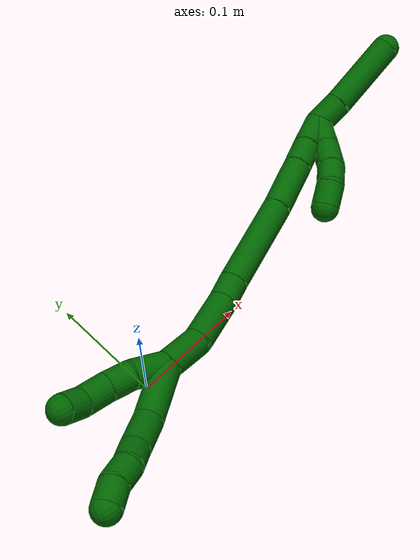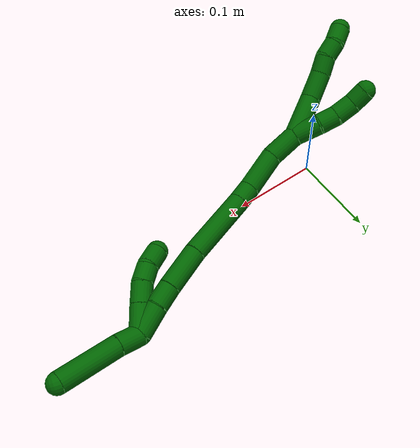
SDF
<sdf version="1.7">
 <world name="default">
  <model name="photoneo_s_sensor">
   <static>1</static>
   <pose>0 0 2 1.57079 1.57079 3.14159</pose>
   <link name="link">
    <inertial><mass>0.1</mass></inertial>
    <sensor name="sensor" type="depth">
     <update_rate>30</update_rate>
     <camera>
      <horizontal_fov>1.22</horizontal_fov>
      <image><width>1920</width><height>1200</height><format>B8G8R8</format></image>
      <clip><near>0.1</near><far>4</far></clip>
      <depth_camera><output>points</output></depth_camera>
     </camera>
     <plugin name="camera_plugin" filename="libgazebo_ros_depth_camera.so">
      <baseline>0.2</baseline>
      <alwaysOn>1</alwaysOn>
      <updateRate>0.0</updateRate>
      <cameraName>camera_ir</cameraName>
      <imageTopicName>/camera/color/image_raw</imageTopicName>
      <cameraInfoTopicName>/camera/color/camera_info</cameraInfoTopicName>
      <depthImageTopicName>/camera/depth/image_raw</depthImageTopicName>
      <depthImageCameraInfoTopicName>/camera/depth/camera_info</depthImageCameraInfoTopicName>
      <pointCloudTopicName>/camera/depth/points</pointCloudTopicName>
      <frameName>fr_optical</frameName>
      <pointCloudCutoff>0.1</pointCloudCutoff>
      <pointCloudCutoffMax>2.0</pointCloudCutoffMax>
      <distortionK1>0</distortionK1>
      <distortionK2>0</distortionK2>
      <distortionK3>0</distortionK3>
      <distortionT1>0</distortionT1>
      <distortionT2>0</distortionT2>
      <CxPrime>0</CxPrime>
      <Cx>0</Cx>
      <Cy>0</Cy>
      <focalLength>0</focalLength>
      <hackBaseline>0</hackBaseline>
     </plugin>
    </sensor>
   </link>
  </model>
  <model name="bin">
   <static>1</static>
   <link name="bottom">
    <collision name="collision-bottom">
     <pose>0 0 -0.01 0 -0 0</pose>
     <geometry><box><size>0.8 0.6 0.02</size></box></geometry>
     <surface>
      <friction><ode><mu>100</mu><mu2>100</mu2></ode></friction>
      <contact><collide_bitmask>65535</collide_bitmask></contact>
     </surface>
    </collision>
   </link>
   <link name="west_wall">
    <collision name="collision-west_wall">
     <pose>-0.41 0 0.1 0 -0 0</pose>
     <geometry><box><size>0.02 0.6 0.2</size></box></geometry>
     <surface>
      <friction><ode><mu>100</mu><mu2>100</mu2></ode></friction>
      <contact><collide_bitmask>65535</collide_bitmask></contact>
     </surface>
    </collision>
   </link>
   <link name="east_wall">
    <collision name="collision-east_wall">
     <pose>0.41 0 0.1 0 -0 0</pose>
     <geometry><box><size>0.02 0.6 0.2</size></box></geometry>
     <surface>
      <friction><ode><mu>100</mu><mu2>100</mu2></ode></friction>
      <contact><collide_bitmask>65535</collide_bitmask></contact>
     </surface>
    </collision>
   </link>
   <link name="south_wall">
    <collision name="collision-south_wall">
     <pose>0 -0.31 0.1 0 -0 0</pose>
     <geometry><box><size>0.8 0.02 0.2</size></box></geometry>
     <surface>
      <friction><ode><mu>100</mu><mu2>100</mu2></ode></friction>
      <contact><collide_bitmask>65535</collide_bitmask></contact>
     </surface>
    </collision>
   </link>
   <link name="north_wall">
    <collision name="collision-north_wall">
     <pose>0 0.31 0.1 0 -0 0</pose>
     <geometry><box><size>0.8 0.02 0.2</size></box></geometry>
     <surface>
      <friction><ode><mu>100</mu><mu2>100</mu2></ode></friction>
      <contact><collide_bitmask>65535</collide_bitmask></contact>
     </surface>
    </collision>
   </link>
  </model>
  <model name="6">
   <static>0</static>
   <link name="6">
    <collision name="collision-cylinder-e_1_2_8">
     <pose>-0.019529 8.3e-05 -0.017953 -3.13699 -0.827402 3.13111</pose>
     <geometry><cylinder><radius>0.0125</radius><length>0.053055</length></cylinder></geometry>
     <surface>
      <friction><ode><mu>1.16</mu><mu2>1.16</mu2><slip1>0</slip1><slip2>0</slip2></ode></friction>
      <contact><ode><kp>1e+06</kp><kd>1</kd><max_vel>0</max_vel><min_depth>0.001</min_depth></ode></contact>
     </surface>
    </collision>
    <visual name="visual-cylinder-e_1_2_8">
     <pose>-0.019529 8.3e-05 -0.017953 -3.13699 -0.827402 3.13111</pose>
     <geometry><cylinder><radius>0.0125</radius><length>0.053055</length></cylinder></geometry>
     <material><ambient>0 0.392157 0.003922 1</ambient></material>
    </visual>
    <collision name="collision-cylinder-e_2_8_9">
     <pose>-0.05135 0.004815 -0.046493 -2.72773 -0.816012 2.23736</pose>
     <geometry><cylinder><radius>0.0125</radius><length>0.033751</length></cylinder></geometry>
     <surface>
      <friction><ode><mu>1.16</mu><mu2>1.16</mu2><slip1>0</slip1><slip2>0</slip2></ode></friction>
      <contact><ode><kp>1e+06</kp><kd>1</kd><max_vel>0</max_vel><min_depth>0.001</min_depth></ode></contact>
     </surface>
    </collision>
    <visual name="visual-cylinder-e_2_8_9">
     <pose>-0.05135 0.004815 -0.046493 -2.72773 -0.816012 2.23736</pose>
     <geometry><cylinder><radius>0.0125</radius><length>0.033751</length></cylinder></geometry>
     <material><ambient>0 0.392157 0.003922 1</ambient></material>
    </visual>
    <collision name="collision-cylinder-e_3_9_10">
     <pose>-0.071825 0.01364 -0.062812 -2.51212 -0.856616 1.90275</pose>
     <geometry><cylinder><radius>0.0125</radius><length>0.021656</length></cylinder></geometry>
     <surface>
      <friction><ode><mu>1.16</mu><mu2>1.16</mu2><slip1>0</slip1><slip2>0</slip2></ode></friction>
      <contact><ode><kp>1e+06</kp><kd>1</kd><max_vel>0</max_vel><min_depth>0.001</min_depth></ode></contact>
     </surface>
    </collision>
    <visual name="visual-cylinder-e_3_9_10">
     <pose>-0.071825 0.01364 -0.062812 -2.51212 -0.856616 1.90275</pose>
     <geometry><cylinder><radius>0.0125</radius><length>0.021656</length></cylinder></geometry>
     <material><ambient>0 0.392157 0.003922 1</ambient></material>
    </visual>
    <collision name="collision-cylinder-e_4_10_11">
     <pose>-0.086128 0.020567 -0.076274 -2.79956 -0.641018 2.18214</pose>
     <geometry><cylinder><radius>0.0125</radius><length>0.020473</length></cylinder></geometry>
     <surface>
      <friction><ode><mu>1.16</mu><mu2>1.16</mu2><slip1>0</slip1><slip2>0</slip2></ode></friction>
      <contact><ode><kp>1e+06</kp><kd>1</kd><max_vel>0</max_vel><min_depth>0.001</min_depth></ode></contact>
     </surface>
    </collision>
    <visual name="visual-cylinder-e_4_10_11">
     <pose>-0.086128 0.020567 -0.076274 -2.79956 -0.641018 2.18214</pose>
     <geometry><cylinder><radius>0.0125</radius><length>0.020473</length></cylinder></geometry>
     <material><ambient>0 0.392157 0.003922 1</ambient></material>
    </visual>
    <collision name="collision-cylinder-e_5_11_6">
     <pose>-0.100267 0.023582 -0.090828 -3.10303 -0.865192 3.05812</pose>
     <geometry><cylinder><radius>0.0125</radius><length>0.021064</length></cylinder></geometry>
     <surface>
      <friction><ode><mu>1.16</mu><mu2>1.16</mu2><slip1>0</slip1><slip2>0</slip2></ode></friction>
      <contact><ode><kp>1e+06</kp><kd>1</kd><max_vel>0</max_vel><min_depth>0.001</min_depth></ode></contact>
     </surface>
    </collision>
    <visual name="visual-cylinder-e_5_11_6">
     <pose>-0.100267 0.023582 -0.090828 -3.10303 -0.865192 3.05812</pose>
     <geometry><cylinder><radius>0.0125</radius><length>0.021064</length></cylinder></geometry>
     <material><ambient>0 0.392157 0.003922 1</ambient></material>
    </visual>
    <collision name="collision-cylinder-e_1_2_12">
     <pose>-0.000469 0.005962 -0.014549 -2.7527 -0.029824 0.151162</pose>
     <geometry><cylinder><radius>0.0125</radius><length>0.03146</length></cylinder></geometry>
     <surface>
      <friction><ode><mu>1.16</mu><mu2>1.16</mu2><slip1>0</slip1><slip2>0</slip2></ode></friction>
      <contact><ode><kp>1e+06</kp><kd>1</kd><max_vel>0</max_vel><min_depth>0.001</min_depth></ode></contact>
     </surface>
    </collision>
    <visual name="visual-cylinder-e_1_2_12">
     <pose>-0.000469 0.005962 -0.014549 -2.7527 -0.029824 0.151162</pose>
     <geometry><cylinder><radius>0.0125</radius><length>0.03146</length></cylinder></geometry>
     <material><ambient>0 0.392157 0.003922 1</ambient></material>
    </visual>
    <collision name="collision-cylinder-e_2_12_13">
     <pose>-0.00236 0.014152 -0.039963 -2.93924 -0.127541 1.12294</pose>
     <geometry><cylinder><radius>0.0125</radius><length>0.022365</length></cylinder></geometry>
     <surface>
      <friction><ode><mu>1.16</mu><mu2>1.16</mu2><slip1>0</slip1><slip2>0</slip2></ode></friction>
      <contact><ode><kp>1e+06</kp><kd>1</kd><max_vel>0</max_vel><min_depth>0.001</min_depth></ode></contact>
     </surface>
    </collision>
    <visual name="visual-cylinder-e_2_12_13">
     <pose>-0.00236 0.014152 -0.039963 -2.93924 -0.127541 1.12294</pose>
     <geometry><cylinder><radius>0.0125</radius><length>0.022365</length></cylinder></geometry>
     <material><ambient>0 0.392157 0.003922 1</ambient></material>
    </visual>
    <collision name="collision-cylinder-e_3_13_14">
     <pose>-0.007326 0.019779 -0.062499 -2.85827 -0.283611 1.57184</pose>
     <geometry><cylinder><radius>0.0125</radius><length>0.025323</length></cylinder></geometry>
     <surface>
      <friction><ode><mu>1.16</mu><mu2>1.16</mu2><slip1>0</slip1><slip2>0</slip2></ode></friction>
      <contact><ode><kp>1e+06</kp><kd>1</kd><max_vel>0</max_vel><min_depth>0.001</min_depth></ode></contact>
     </surface>
    </collision>
    <visual name="visual-cylinder-e_3_13_14">
     <pose>-0.007326 0.019779 -0.062499 -2.85827 -0.283611 1.57184</pose>
     <geometry><cylinder><radius>0.0125</radius><length>0.025323</length></cylinder></geometry>
     <material><ambient>0 0.392157 0.003922 1</ambient></material>
    </visual>
    <collision name="collision-cylinder-e_4_14_5">
     <pose>-0.01422 0.028917 -0.082203 -2.5212 -0.327267 0.951293</pose>
     <geometry><cylinder><radius>0.0125</radius><length>0.020852</length></cylinder></geometry>
     <surface>
      <friction><ode><mu>1.16</mu><mu2>1.16</mu2><slip1>0</slip1><slip2>0</slip2></ode></friction>
      <contact><ode><kp>1e+06</kp><kd>1</kd><max_vel>0</max_vel><min_depth>0.001</min_depth></ode></contact>
     </surface>
    </collision>
    <visual name="visual-cylinder-e_4_14_5">
     <pose>-0.01422 0.028917 -0.082203 -2.5212 -0.327267 0.951293</pose>
     <geometry><cylinder><radius>0.0125</radius><length>0.020852</length></cylinder></geometry>
     <material><ambient>0 0.392157 0.003922 1</ambient></material>
    </visual>
    <collision name="collision-cylinder-e_1_2_15">
     <pose>0.007154 -0.004144 0.016908 0.240349 0.389917 0.047682</pose>
     <geometry><cylinder><radius>0.0125</radius><length>0.037643</length></cylinder></geometry>
     <surface>
      <friction><ode><mu>1.16</mu><mu2>1.16</mu2><slip1>0</slip1><slip2>0</slip2></ode></friction>
      <contact><ode><kp>1e+06</kp><kd>1</kd><max_vel>0</max_vel><min_depth>0.001</min_depth></ode></contact>
     </surface>
    </collision>
    <visual name="visual-cylinder-e_1_2_15">
     <pose>0.007154 -0.004144 0.016908 0.240349 0.389917 0.047682</pose>
     <geometry><cylinder><radius>0.0125</radius><length>0.037643</length></cylinder></geometry>
     <material><ambient>0 0.392157 0.003922 1</ambient></material>
    </visual>
    <collision name="collision-cylinder-e_2_15_16">
     <pose>0.028628 -0.0107 0.05308 0.124546 0.635495 0.041009</pose>
     <geometry><cylinder><radius>0.0125</radius><length>0.048247</length></cylinder></geometry>
     <surface>
      <friction><ode><mu>1.16</mu><mu2>1.16</mu2><slip1>0</slip1><slip2>0</slip2></ode></friction>
      <contact><ode><kp>1e+06</kp><kd>1</kd><max_vel>0</max_vel><min_depth>0.001</min_depth></ode></contact>
     </surface>
    </collision>
    <visual name="visual-cylinder-e_2_15_16">
     <pose>0.028628 -0.0107 0.05308 0.124546 0.635495 0.041009</pose>
     <geometry><cylinder><radius>0.0125</radius><length>0.048247</length></cylinder></geometry>
     <material><ambient>0 0.392157 0.003922 1</ambient></material>
    </visual>
    <collision name="collision-cylinder-e_3_16_17">
     <pose>0.04913 -0.011746 0.081342 -0.150644 0.596735 -0.04641</pose>
     <geometry><cylinder><radius>0.0125</radius><length>0.022006</length></cylinder></geometry>
     <surface>
      <friction><ode><mu>1.16</mu><mu2>1.16</mu2><slip1>0</slip1><slip2>0</slip2></ode></friction>
      <contact><ode><kp>1e+06</kp><kd>1</kd><max_vel>0</max_vel><min_depth>0.001</min_depth></ode></contact>
     </surface>
    </collision>
    <visual name="visual-cylinder-e_3_16_17">
     <pose>0.04913 -0.011746 0.081342 -0.150644 0.596735 -0.04641</pose>
     <geometry><cylinder><radius>0.0125</radius><length>0.022006</length></cylinder></geometry>
     <material><ambient>0 0.392157 0.003922 1</ambient></material>
    </visual>
    <collision name="collision-cylinder-e_4_17_18">
     <pose>0.077218 -0.005665 0.125285 -0.134113 0.555881 -0.038319</pose>
     <geometry><cylinder><radius>0.0125</radius><length>0.083023</length></cylinder></geometry>
     <surface>
      <friction><ode><mu>1.16</mu><mu2>1.16</mu2><slip1>0</slip1><slip2>0</slip2></ode></friction>
      <contact><ode><kp>1e+06</kp><kd>1</kd><max_vel>0</max_vel><min_depth>0.001</min_depth></ode></contact>
     </surface>
    </collision>
    <visual name="visual-cylinder-e_4_17_18">
     <pose>0.077218 -0.005665 0.125285 -0.134113 0.555881 -0.038319</pose>
     <geometry><cylinder><radius>0.0125</radius><length>0.083023</length></cylinder></geometry>
     <material><ambient>0 0.392157 0.003922 1</ambient></material>
    </visual>
    <collision name="collision-cylinder-e_5_18_19">
     <pose>0.113748 0.001298 0.179963 -0.113437 0.634717 -0.037295</pose>
     <geometry><cylinder><radius>0.0125</radius><length>0.049329</length></cylinder></geometry>
     <surface>
      <friction><ode><mu>1.16</mu><mu2>1.16</mu2><slip1>0</slip1><slip2>0</slip2></ode></friction>
      <contact><ode><kp>1e+06</kp><kd>1</kd><max_vel>0</max_vel><min_depth>0.001</min_depth></ode></contact>
     </surface>
    </collision>
    <visual name="visual-cylinder-e_5_18_19">
     <pose>0.113748 0.001298 0.179963 -0.113437 0.634717 -0.037295</pose>
     <geometry><cylinder><radius>0.0125</radius><length>0.049329</length></cylinder></geometry>
     <material><ambient>0 0.392157 0.003922 1</ambient></material>
    </visual>
    <collision name="collision-cylinder-e_6_19_20">
     <pose>0.136357 0.004078 0.209516 -0.054085 0.681906 -0.019194</pose>
     <geometry><cylinder><radius>0.0125</radius><length>0.025335</length></cylinder></geometry>
     <surface>
      <friction><ode><mu>1.16</mu><mu2>1.16</mu2><slip1>0</slip1><slip2>0</slip2></ode></friction>
      <contact><ode><kp>1e+06</kp><kd>1</kd><max_vel>0</max_vel><min_depth>0.001</min_depth></ode></contact>
     </surface>
    </collision>
    <visual name="visual-cylinder-e_6_19_20">
     <pose>0.136357 0.004078 0.209516 -0.054085 0.681906 -0.019194</pose>
     <geometry><cylinder><radius>0.0125</radius><length>0.025335</length></cylinder></geometry>
     <material><ambient>0 0.392157 0.003922 1</ambient></material>
    </visual>
    <collision name="collision-cylinder-e_7_20_1">
     <pose>0.155653 0.003447 0.232252 0.089786 0.717343 0.033679</pose>
     <geometry><cylinder><radius>0.0125</radius><length>0.034418</length></cylinder></geometry>
     <surface>
      <friction><ode><mu>1.16</mu><mu2>1.16</mu2><slip1>0</slip1><slip2>0</slip2></ode></friction>
      <contact><ode><kp>1e+06</kp><kd>1</kd><max_vel>0</max_vel><min_depth>0.001</min_depth></ode></contact>
     </surface>
    </collision>
    <visual name="visual-cylinder-e_7_20_1">
     <pose>0.155653 0.003447 0.232252 0.089786 0.717343 0.033679</pose>
     <geometry><cylinder><radius>0.0125</radius><length>0.034418</length></cylinder></geometry>
     <material><ambient>0 0.392157 0.003922 1</ambient></material>
    </visual>
    <collision name="collision-cylinder-e_1_1_21">
     <pose>0.151872 0.001111 0.239911 2.922 -1.22806 -2.83135</pose>
     <geometry><cylinder><radius>0.0125</radius><length>0.032052</length></cylinder></geometry>
     <surface>
      <friction><ode><mu>1.16</mu><mu2>1.16</mu2><slip1>0</slip1><slip2>0</slip2></ode></friction>
      <contact><ode><kp>1e+06</kp><kd>1</kd><max_vel>0</max_vel><min_depth>0.001</min_depth></ode></contact>
     </surface>
    </collision>
    <visual name="visual-cylinder-e_1_1_21">
     <pose>0.151872 0.001111 0.239911 2.922 -1.22806 -2.83135</pose>
     <geometry><cylinder><radius>0.0125</radius><length>0.032052</length></cylinder></geometry>
     <material><ambient>0 0.392157 0.003922 1</ambient></material>
    </visual>
    <collision name="collision-cylinder-e_2_21_22">
     <pose>0.125284 -0.001004 0.230247 2.93123 -1.19706 -2.83443</pose>
     <geometry><cylinder><radius>0.0125</radius><length>0.024693</length></cylinder></geometry>
     <surface>
      <friction><ode><mu>1.16</mu><mu2>1.16</mu2><slip1>0</slip1><slip2>0</slip2></ode></friction>
      <contact><ode><kp>1e+06</kp><kd>1</kd><max_vel>0</max_vel><min_depth>0.001</min_depth></ode></contact>
     </surface>
    </collision>
    <visual name="visual-cylinder-e_2_21_22">
     <pose>0.125284 -0.001004 0.230247 2.93123 -1.19706 -2.83443</pose>
     <geometry><cylinder><radius>0.0125</radius><length>0.024693</length></cylinder></geometry>
     <material><ambient>0 0.392157 0.003922 1</ambient></material>
    </visual>
    <collision name="collision-cylinder-e_3_22_23">
     <pose>0.105529 -0.003354 0.220121 2.89995 -0.951545 -2.67877</pose>
     <geometry><cylinder><radius>0.0125</radius><length>0.020289</length></cylinder></geometry>
     <surface>
      <friction><ode><mu>1.16</mu><mu2>1.16</mu2><slip1>0</slip1><slip2>0</slip2></ode></friction>
      <contact><ode><kp>1e+06</kp><kd>1</kd><max_vel>0</max_vel><min_depth>0.001</min_depth></ode></contact>
     </surface>
    </collision>
    <visual name="visual-cylinder-e_3_22_23">
     <pose>0.105529 -0.003354 0.220121 2.89995 -0.951545 -2.67877</pose>
     <geometry><cylinder><radius>0.0125</radius><length>0.020289</length></cylinder></geometry>
     <material><ambient>0 0.392157 0.003922 1</ambient></material>
    </visual>
    <collision name="collision-cylinder-e_4_23_4">
     <pose>0.09003 -0.008775 0.206444 2.6747 -0.682019 -1.96092</pose>
     <geometry><cylinder><radius>0.0125</radius><length>0.022966</length></cylinder></geometry>
     <surface>
      <friction><ode><mu>1.16</mu><mu2>1.16</mu2><slip1>0</slip1><slip2>0</slip2></ode></friction>
      <contact><ode><kp>1e+06</kp><kd>1</kd><max_vel>0</max_vel><min_depth>0.001</min_depth></ode></contact>
     </surface>
    </collision>
    <visual name="visual-cylinder-e_4_23_4">
     <pose>0.09003 -0.008775 0.206444 2.6747 -0.682019 -1.96092</pose>
     <geometry><cylinder><radius>0.0125</radius><length>0.022966</length></cylinder></geometry>
     <material><ambient>0 0.392157 0.003922 1</ambient></material>
    </visual>
    <collision name="collision-cylinder-e_1_1_24">
     <pose>0.169346 0.00579 0.258284 -0.261222 0.173539 -0.022852</pose>
     <geometry><cylinder><radius>0.0125</radius><length>0.027567</length></cylinder></geometry>
     <surface>
      <friction><ode><mu>1.16</mu><mu2>1.16</mu2><slip1>0</slip1><slip2>0</slip2></ode></friction>
      <contact><ode><kp>1e+06</kp><kd>1</kd><max_vel>0</max_vel><min_depth>0.001</min_depth></ode></contact>
     </surface>
    </collision>
    <visual name="visual-cylinder-e_1_1_24">
     <pose>0.169346 0.00579 0.258284 -0.261222 0.173539 -0.022852</pose>
     <geometry><cylinder><radius>0.0125</radius><length>0.027567</length></cylinder></geometry>
     <material><ambient>0 0.392157 0.003922 1</ambient></material>
    </visual>
    <collision name="collision-cylinder-e_2_24_3">
     <pose>0.181103 0.018711 0.305091 -0.272483 0.26189 -0.036105</pose>
     <geometry><cylinder><radius>0.0125</radius><length>0.072433</length></cylinder></geometry>
     <surface>
      <friction><ode><mu>1.16</mu><mu2>1.16</mu2><slip1>0</slip1><slip2>0</slip2></ode></friction>
      <contact><ode><kp>1e+06</kp><kd>1</kd><max_vel>0</max_vel><min_depth>0.001</min_depth></ode></contact>
     </surface>
    </collision>
    <visual name="visual-cylinder-e_2_24_3">
     <pose>0.181103 0.018711 0.305091 -0.272483 0.26189 -0.036105</pose>
     <geometry><cylinder><radius>0.0125</radius><length>0.072433</length></cylinder></geometry>
     <material><ambient>0 0.392157 0.003922 1</ambient></material>
    </visual>
    <collision name="collision-sphere-3">
     <pose>0.19048 0.028125 0.338782 0 -0 0</pose>
     <geometry><sphere><radius>0.0125</radius></sphere></geometry>
     <surface>
      <friction><ode><mu>1.16</mu><mu2>1.16</mu2><slip1>0</slip1><slip2>0</slip2></ode></friction>
      <contact><ode><kp>1e+06</kp><kd>1</kd><max_vel>0</max_vel><min_depth>0.001</min_depth></ode></contact>
     </surface>
    </collision>
    <visual name="visual-sphere-3">
     <pose>0.19048 0.028125 0.338782 0 -0 0</pose>
     <geometry><sphere><radius>0.0125</radius></sphere></geometry>
     <material><ambient>0 0.392157 0.003922 1</ambient></material>
    </visual>
    <collision name="collision-sphere-24">
     <pose>0.171726 0.009297 0.2714 0 -0 0</pose>
     <geometry><sphere><radius>0.0125</radius></sphere></geometry>
     <surface>
      <friction><ode><mu>1.16</mu><mu2>1.16</mu2><slip1>0</slip1><slip2>0</slip2></ode></friction>
      <contact><ode><kp>1e+06</kp><kd>1</kd><max_vel>0</max_vel><min_depth>0.001</min_depth></ode></contact>
     </surface>
    </collision>
    <visual name="visual-sphere-24">
     <pose>0.171726 0.009297 0.2714 0 -0 0</pose>
     <geometry><sphere><radius>0.0125</radius></sphere></geometry>
     <material><ambient>0 0.392157 0.003922 1</ambient></material>
    </visual>
    <collision name="collision-sphere-4">
     <pose>0.082791 -0.012788 0.198484 0 -0 0</pose>
     <geometry><sphere><radius>0.0125</radius></sphere></geometry>
     <surface>
      <friction><ode><mu>1.16</mu><mu2>1.16</mu2><slip1>0</slip1><slip2>0</slip2></ode></friction>
      <contact><ode><kp>1e+06</kp><kd>1</kd><max_vel>0</max_vel><min_depth>0.001</min_depth></ode></contact>
     </surface>
    </collision>
    <visual name="visual-sphere-4">
     <pose>0.082791 -0.012788 0.198484 0 -0 0</pose>
     <geometry><sphere><radius>0.0125</radius></sphere></geometry>
     <material><ambient>0 0.392157 0.003922 1</ambient></material>
    </visual>
    <collision name="collision-sphere-23">
     <pose>0.097268 -0.004763 0.214404 0 -0 0</pose>
     <geometry><sphere><radius>0.0125</radius></sphere></geometry>
     <surface>
      <friction><ode><mu>1.16</mu><mu2>1.16</mu2><slip1>0</slip1><slip2>0</slip2></ode></friction>
      <contact><ode><kp>1e+06</kp><kd>1</kd><max_vel>0</max_vel><min_depth>0.001</min_depth></ode></contact>
     </surface>
    </collision>
    <visual name="visual-sphere-23">
     <pose>0.097268 -0.004763 0.214404 0 -0 0</pose>
     <geometry><sphere><radius>0.0125</radius></sphere></geometry>
     <material><ambient>0 0.392157 0.003922 1</ambient></material>
    </visual>
    <collision name="collision-sphere-22">
     <pose>0.11379 -0.001945 0.225838 0 -0 0</pose>
     <geometry><sphere><radius>0.0125</radius></sphere></geometry>
     <surface>
      <friction><ode><mu>1.16</mu><mu2>1.16</mu2><slip1>0</slip1><slip2>0</slip2></ode></friction>
      <contact><ode><kp>1e+06</kp><kd>1</kd><max_vel>0</max_vel><min_depth>0.001</min_depth></ode></contact>
     </surface>
    </collision>
    <visual name="visual-sphere-22">
     <pose>0.11379 -0.001945 0.225838 0 -0 0</pose>
     <geometry><sphere><radius>0.0125</radius></sphere></geometry>
     <material><ambient>0 0.392157 0.003922 1</ambient></material>
    </visual>
    <collision name="collision-sphere-21">
     <pose>0.136779 -6.2e-05 0.234655 0 -0 0</pose>
     <geometry><sphere><radius>0.0125</radius></sphere></geometry>
     <surface>
      <friction><ode><mu>1.16</mu><mu2>1.16</mu2><slip1>0</slip1><slip2>0</slip2></ode></friction>
      <contact><ode><kp>1e+06</kp><kd>1</kd><max_vel>0</max_vel><min_depth>0.001</min_depth></ode></contact>
     </surface>
    </collision>
    <visual name="visual-sphere-21">
     <pose>0.136779 -6.2e-05 0.234655 0 -0 0</pose>
     <geometry><sphere><radius>0.0125</radius></sphere></geometry>
     <material><ambient>0 0.392157 0.003922 1</ambient></material>
    </visual>
    <collision name="collision-sphere-1">
     <pose>0.166966 0.002284 0.245168 0 -0 0</pose>
     <geometry><sphere><radius>0.0125</radius></sphere></geometry>
     <surface>
      <friction><ode><mu>1.16</mu><mu2>1.16</mu2><slip1>0</slip1><slip2>0</slip2></ode></friction>
      <contact><ode><kp>1e+06</kp><kd>1</kd><max_vel>0</max_vel><min_depth>0.001</min_depth></ode></contact>
     </surface>
    </collision>
    <visual name="visual-sphere-1">
     <pose>0.166966 0.002284 0.245168 0 -0 0</pose>
     <geometry><sphere><radius>0.0125</radius></sphere></geometry>
     <material><ambient>0 0.392157 0.003922 1</ambient></material>
    </visual>
    <collision name="collision-sphere-6">
     <pose>-0.108285 0.023846 -0.097653 0 -0 0</pose>
     <geometry><sphere><radius>0.0125</radius></sphere></geometry>
     <surface>
      <friction><ode><mu>1.16</mu><mu2>1.16</mu2><slip1>0</slip1><slip2>0</slip2></ode></friction>
      <contact><ode><kp>1e+06</kp><kd>1</kd><max_vel>0</max_vel><min_depth>0.001</min_depth></ode></contact>
     </surface>
    </collision>
    <visual name="visual-sphere-6">
     <pose>-0.108285 0.023846 -0.097653 0 -0 0</pose>
     <geometry><sphere><radius>0.0125</radius></sphere></geometry>
     <material><ambient>0 0.392157 0.003922 1</ambient></material>
    </visual>
    <collision name="collision-sphere-11">
     <pose>-0.09225 0.023319 -0.084003 0 -0 0</pose>
     <geometry><sphere><radius>0.0125</radius></sphere></geometry>
     <surface>
      <friction><ode><mu>1.16</mu><mu2>1.16</mu2><slip1>0</slip1><slip2>0</slip2></ode></friction>
      <contact><ode><kp>1e+06</kp><kd>1</kd><max_vel>0</max_vel><min_depth>0.001</min_depth></ode></contact>
     </surface>
    </collision>
    <visual name="visual-sphere-11">
     <pose>-0.09225 0.023319 -0.084003 0 -0 0</pose>
     <geometry><sphere><radius>0.0125</radius></sphere></geometry>
     <material><ambient>0 0.392157 0.003922 1</ambient></material>
    </visual>
    <collision name="collision-sphere-10">
     <pose>-0.080007 0.017815 -0.068545 0 -0 0</pose>
     <geometry><sphere><radius>0.0125</radius></sphere></geometry>
     <surface>
      <friction><ode><mu>1.16</mu><mu2>1.16</mu2><slip1>0</slip1><slip2>0</slip2></ode></friction>
      <contact><ode><kp>1e+06</kp><kd>1</kd><max_vel>0</max_vel><min_depth>0.001</min_depth></ode></contact>
     </surface>
    </collision>
    <visual name="visual-sphere-10">
     <pose>-0.080007 0.017815 -0.068545 0 -0 0</pose>
     <geometry><sphere><radius>0.0125</radius></sphere></geometry>
     <material><ambient>0 0.392157 0.003922 1</ambient></material>
    </visual>
    <collision name="collision-sphere-9">
     <pose>-0.063643 0.009464 -0.057079 0 -0 0</pose>
     <geometry><sphere><radius>0.0125</radius></sphere></geometry>
     <surface>
      <friction><ode><mu>1.16</mu><mu2>1.16</mu2><slip1>0</slip1><slip2>0</slip2></ode></friction>
      <contact><ode><kp>1e+06</kp><kd>1</kd><max_vel>0</max_vel><min_depth>0.001</min_depth></ode></contact>
     </surface>
    </collision>
    <visual name="visual-sphere-9">
     <pose>-0.063643 0.009464 -0.057079 0 -0 0</pose>
     <geometry><sphere><radius>0.0125</radius></sphere></geometry>
     <material><ambient>0 0.392157 0.003922 1</ambient></material>
    </visual>
    <collision name="collision-sphere-2">
     <geometry><sphere><radius>0.0125</radius></sphere></geometry>
     <surface>
      <friction><ode><mu>1.16</mu><mu2>1.16</mu2><slip1>0</slip1><slip2>0</slip2></ode></friction>
      <contact><ode><kp>1e+06</kp><kd>1</kd><max_vel>0</max_vel><min_depth>0.001</min_depth></ode></contact>
     </surface>
    </collision>
    <visual name="visual-sphere-2">
     <geometry><sphere><radius>0.0125</radius></sphere></geometry>
     <material><ambient>0 0.392157 0.003922 1</ambient></material>
    </visual>
    <collision name="collision-sphere-19">
     <pose>0.128373 0.003546 0.199696 0 -0 0</pose>
     <geometry><sphere><radius>0.0125</radius></sphere></geometry>
     <surface>
      <friction><ode><mu>1.16</mu><mu2>1.16</mu2><slip1>0</slip1><slip2>0</slip2></ode></friction>
      <contact><ode><kp>1e+06</kp><kd>1</kd><max_vel>0</max_vel><min_depth>0.001</min_depth></ode></contact>
     </surface>
    </collision>
    <visual name="visual-sphere-19">
     <pose>0.128373 0.003546 0.199696 0 -0 0</pose>
     <geometry><sphere><radius>0.0125</radius></sphere></geometry>
     <material><ambient>0 0.392157 0.003922 1</ambient></material>
    </visual>
    <collision name="collision-sphere-8">
     <pose>-0.039058 0.000165 -0.035907 0 -0 0</pose>
     <geometry><sphere><radius>0.0125</radius></sphere></geometry>
     <surface>
      <friction><ode><mu>1.16</mu><mu2>1.16</mu2><slip1>0</slip1><slip2>0</slip2></ode></friction>
      <contact><ode><kp>1e+06</kp><kd>1</kd><max_vel>0</max_vel><min_depth>0.001</min_depth></ode></contact>
     </surface>
    </collision>
    <visual name="visual-sphere-8">
     <pose>-0.039058 0.000165 -0.035907 0 -0 0</pose>
     <geometry><sphere><radius>0.0125</radius></sphere></geometry>
     <material><ambient>0 0.392157 0.003922 1</ambient></material>
    </visual>
    <collision name="collision-sphere-12">
     <pose>-0.000938 0.011923 -0.029098 0 -0 0</pose>
     <geometry><sphere><radius>0.0125</radius></sphere></geometry>
     <surface>
      <friction><ode><mu>1.16</mu><mu2>1.16</mu2><slip1>0</slip1><slip2>0</slip2></ode></friction>
      <contact><ode><kp>1e+06</kp><kd>1</kd><max_vel>0</max_vel><min_depth>0.001</min_depth></ode></contact>
     </surface>
    </collision>
    <visual name="visual-sphere-12">
     <pose>-0.000938 0.011923 -0.029098 0 -0 0</pose>
     <geometry><sphere><radius>0.0125</radius></sphere></geometry>
     <material><ambient>0 0.392157 0.003922 1</ambient></material>
    </visual>
    <collision name="collision-sphere-13">
     <pose>-0.003783 0.016381 -0.050828 0 -0 0</pose>
     <geometry><sphere><radius>0.0125</radius></sphere></geometry>
     <surface>
      <friction><ode><mu>1.16</mu><mu2>1.16</mu2><slip1>0</slip1><slip2>0</slip2></ode></friction>
      <contact><ode><kp>1e+06</kp><kd>1</kd><max_vel>0</max_vel><min_depth>0.001</min_depth></ode></contact>
     </surface>
    </collision>
    <visual name="visual-sphere-13">
     <pose>-0.003783 0.016381 -0.050828 0 -0 0</pose>
     <geometry><sphere><radius>0.0125</radius></sphere></geometry>
     <material><ambient>0 0.392157 0.003922 1</ambient></material>
    </visual>
    <collision name="collision-sphere-14">
     <pose>-0.010869 0.023178 -0.07417 0 -0 0</pose>
     <geometry><sphere><radius>0.0125</radius></sphere></geometry>
     <surface>
      <friction><ode><mu>1.16</mu><mu2>1.16</mu2><slip1>0</slip1><slip2>0</slip2></ode></friction>
      <contact><ode><kp>1e+06</kp><kd>1</kd><max_vel>0</max_vel><min_depth>0.001</min_depth></ode></contact>
     </surface>
    </collision>
    <visual name="visual-sphere-14">
     <pose>-0.010869 0.023178 -0.07417 0 -0 0</pose>
     <geometry><sphere><radius>0.0125</radius></sphere></geometry>
     <material><ambient>0 0.392157 0.003922 1</ambient></material>
    </visual>
    <collision name="collision-sphere-5">
     <pose>-0.017572 0.034657 -0.090236 0 -0 0</pose>
     <geometry><sphere><radius>0.0125</radius></sphere></geometry>
     <surface>
      <friction><ode><mu>1.16</mu><mu2>1.16</mu2><slip1>0</slip1><slip2>0</slip2></ode></friction>
      <contact><ode><kp>1e+06</kp><kd>1</kd><max_vel>0</max_vel><min_depth>0.001</min_depth></ode></contact>
     </surface>
    </collision>
    <visual name="visual-sphere-5">
     <pose>-0.017572 0.034657 -0.090236 0 -0 0</pose>
     <geometry><sphere><radius>0.0125</radius></sphere></geometry>
     <material><ambient>0 0.392157 0.003922 1</ambient></material>
    </visual>
    <collision name="collision-sphere-15">
     <pose>0.014309 -0.008288 0.033817 0 -0 0</pose>
     <geometry><sphere><radius>0.0125</radius></sphere></geometry>
     <surface>
      <friction><ode><mu>1.16</mu><mu2>1.16</mu2><slip1>0</slip1><slip2>0</slip2></ode></friction>
      <contact><ode><kp>1e+06</kp><kd>1</kd><max_vel>0</max_vel><min_depth>0.001</min_depth></ode></contact>
     </surface>
    </collision>
    <visual name="visual-sphere-15">
     <pose>0.014309 -0.008288 0.033817 0 -0 0</pose>
     <geometry><sphere><radius>0.0125</radius></sphere></geometry>
     <material><ambient>0 0.392157 0.003922 1</ambient></material>
    </visual>
    <collision name="collision-sphere-16">
     <pose>0.042947 -0.013111 0.072344 0 -0 0</pose>
     <geometry><sphere><radius>0.0125</radius></sphere></geometry>
     <surface>
      <friction><ode><mu>1.16</mu><mu2>1.16</mu2><slip1>0</slip1><slip2>0</slip2></ode></friction>
      <contact><ode><kp>1e+06</kp><kd>1</kd><max_vel>0</max_vel><min_depth>0.001</min_depth></ode></contact>
     </surface>
    </collision>
    <visual name="visual-sphere-16">
     <pose>0.042947 -0.013111 0.072344 0 -0 0</pose>
     <geometry><sphere><radius>0.0125</radius></sphere></geometry>
     <material><ambient>0 0.392157 0.003922 1</ambient></material>
    </visual>
    <collision name="collision-sphere-17">
     <pose>0.055313 -0.01038 0.090341 0 -0 0</pose>
     <geometry><sphere><radius>0.0125</radius></sphere></geometry>
     <surface>
      <friction><ode><mu>1.16</mu><mu2>1.16</mu2><slip1>0</slip1><slip2>0</slip2></ode></friction>
      <contact><ode><kp>1e+06</kp><kd>1</kd><max_vel>0</max_vel><min_depth>0.001</min_depth></ode></contact>
     </surface>
    </collision>
    <visual name="visual-sphere-17">
     <pose>0.055313 -0.01038 0.090341 0 -0 0</pose>
     <geometry><sphere><radius>0.0125</radius></sphere></geometry>
     <material><ambient>0 0.392157 0.003922 1</ambient></material>
    </visual>
    <collision name="collision-sphere-18">
     <pose>0.099123 -0.00095 0.16023 0 -0 0</pose>
     <geometry><sphere><radius>0.0125</radius></sphere></geometry>
     <surface>
      <friction><ode><mu>1.16</mu><mu2>1.16</mu2><slip1>0</slip1><slip2>0</slip2></ode></friction>
      <contact><ode><kp>1e+06</kp><kd>1</kd><max_vel>0</max_vel><min_depth>0.001</min_depth></ode></contact>
     </surface>
    </collision>
    <visual name="visual-sphere-18">
     <pose>0.099123 -0.00095 0.16023 0 -0 0</pose>
     <geometry><sphere><radius>0.0125</radius></sphere></geometry>
     <material><ambient>0 0.392157 0.003922 1</ambient></material>
    </visual>
    <collision name="collision-sphere-20">
     <pose>0.144341 0.00461 0.219336 0 -0 0</pose>
     <geometry><sphere><radius>0.0125</radius></sphere></geometry>
     <surface>
      <friction><ode><mu>1.16</mu><mu2>1.16</mu2><slip1>0</slip1><slip2>0</slip2></ode></friction>
      <contact><ode><kp>1e+06</kp><kd>1</kd><max_vel>0</max_vel><min_depth>0.001</min_depth></ode></contact>
     </surface>
    </collision>
    <visual name="visual-sphere-20">
     <pose>0.144341 0.00461 0.219336 0 -0 0</pose>
     <geometry><sphere><radius>0.0125</radius></sphere></geometry>
     <material><ambient>0 0.392157 0.003922 1</ambient></material>
    </visual>
    <inertial>
     <pose>0.059696 0.004172 0.103152 0 -0 0</pose>
     <mass>0.75</mass>
     <inertia>
      <ixx>0.000102</ixx>
      <ixy>0</ixy>
      <ixz>0</ixz>
      <iyy>0.000161</iyy>
      <iyz>0</iyz>
      <izz>-4.1e-05</izz>
     </inertia>
    </inertial>
   </link>
   <pose>0.010708 -0.016087 0.055725 1.55413 0.305446 1.30167</pose>
  </model>
 </world>
</sdf>
